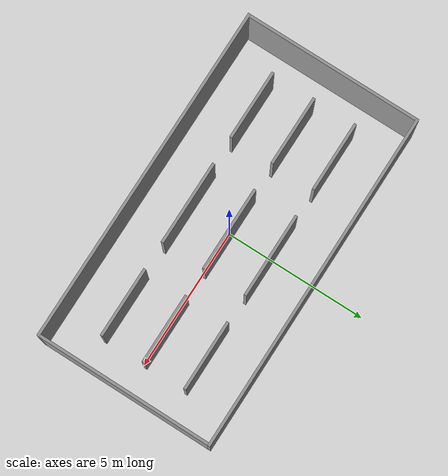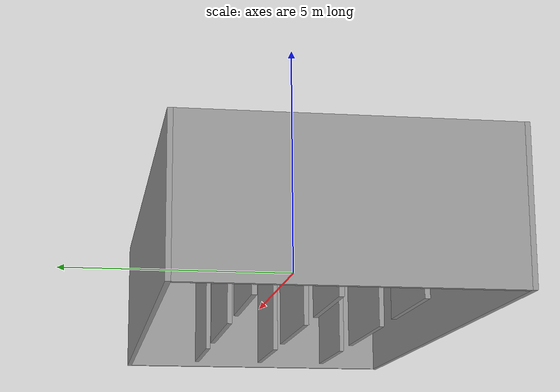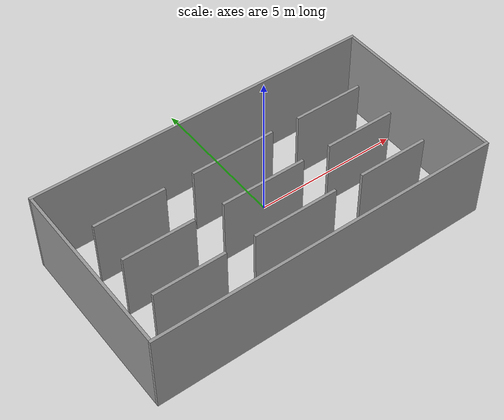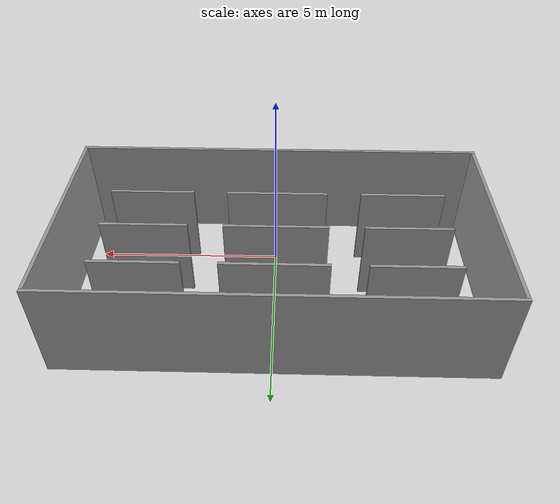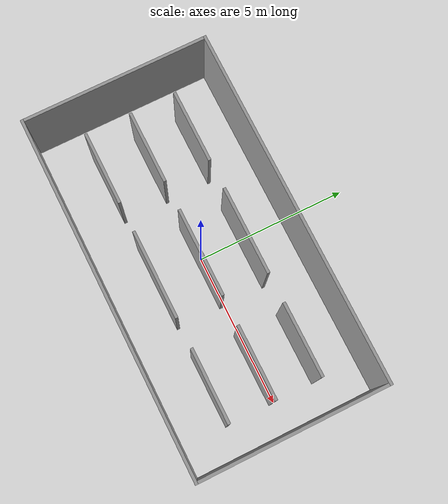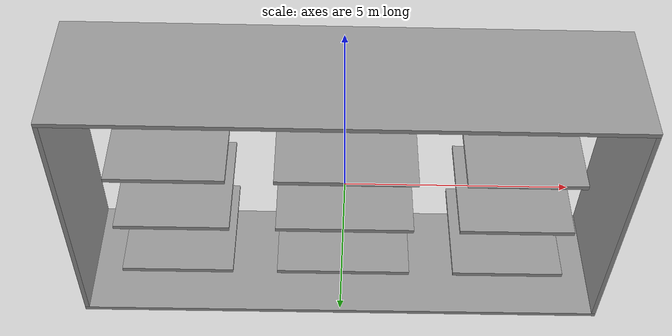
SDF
<?xml version='1.0'?>
<sdf version='1.6'>
  <model name='greehouse_wall'>
    <link name='link_2'>
      <pose frame=''>-0 3.15 0.173077 0 -0 0</pose>
      <inertial>
        <mass>1</mass>
        <inertia>
          <ixx>0.166667</ixx>
          <ixy>0</ixy>
          <ixz>0</ixz>
          <iyy>0.166667</iyy>
          <iyz>0</iyz>
          <izz>0.166667</izz>
        </inertia>
        <pose frame=''>0 0 0 0 -0 0</pose>
      </inertial>
      <self_collide>0</self_collide>
      <kinematic>0</kinematic>
      <visual name='visual'>
        <pose frame=''>0 0 0 0 -0 0</pose>
        <geometry>
          <box>
            <size>12.2 0.1 3</size>
          </box>
        </geometry>
        <material>
          <lighting>1</lighting>
          <script>
            <uri>file://media/materials/scripts/gazebo.material</uri>
            <name>Gazebo/Grey</name>
          </script>
          <ambient>0.3 0.3 0.3 1</ambient>
          <diffuse>0.7 0.7 0.7 1</diffuse>
          <specular>0.01 0.01 0.01 1</specular>
          <emissive>0 0 0 1</emissive>
          <shader type='vertex'>
            <normal_map>__default__</normal_map>
          </shader>
        </material>
        <cast_shadows>1</cast_shadows>
        <transparency>0</transparency>
      </visual>
      <collision name='collision'>
        <laser_retro>0</laser_retro>
        <max_contacts>10</max_contacts>
        <pose frame=''>0 0 0 0 -0 0</pose>
        <geometry>
          <box>
            <size>12.2 0.1 3</size>
          </box>
        </geometry>
        <surface>
          <friction>
            <ode>
              <mu>1</mu>
              <mu2>1</mu2>
              <fdir1>0 0 0</fdir1>
              <slip1>0</slip1>
              <slip2>0</slip2>
            </ode>
            <torsional>
              <coefficient>1</coefficient>
              <patch_radius>0</patch_radius>
              <surface_radius>0</surface_radius>
              <use_patch_radius>1</use_patch_radius>
              <ode>
                <slip>0</slip>
              </ode>
            </torsional>
          </friction>
          <bounce>
            <restitution_coefficient>0</restitution_coefficient>
            <threshold>1e+06</threshold>
          </bounce>
          <contact>
            <collide_without_contact>0</collide_without_contact>
            <collide_without_contact_bitmask>1</collide_without_contact_bitmask>
            <collide_bitmask>1</collide_bitmask>
            <ode>
              <soft_cfm>0</soft_cfm>
              <soft_erp>0.2</soft_erp>
              <kp>1e+13</kp>
              <kd>1</kd>
              <max_vel>0.01</max_vel>
              <min_depth>0</min_depth>
            </ode>
            <bullet>
              <split_impulse>1</split_impulse>
              <split_impulse_penetration_threshold>-0.01</split_impulse_penetration_threshold>
              <soft_cfm>0</soft_cfm>
              <soft_erp>0.2</soft_erp>
              <kp>1e+13</kp>
              <kd>1</kd>
            </bullet>
          </contact>
        </surface>
      </collision>
    </link>
    <link name='link_2_clone'>
      <pose frame=''>0 -3.15 0.173077 0 -0 0</pose>
      <inertial>
        <mass>1</mass>
        <inertia>
          <ixx>0.166667</ixx>
          <ixy>0</ixy>
          <ixz>0</ixz>
          <iyy>0.166667</iyy>
          <iyz>0</iyz>
          <izz>0.166667</izz>
        </inertia>
        <pose frame=''>0 0 0 0 -0 0</pose>
      </inertial>
      <self_collide>0</self_collide>
      <kinematic>0</kinematic>
      <visual name='visual'>
        <pose frame=''>0 0 0 0 -0 0</pose>
        <geometry>
          <box>
            <size>12.2 0.1 3</size>
          </box>
        </geometry>
        <material>
          <lighting>1</lighting>
          <script>
            <uri>file://media/materials/scripts/gazebo.material</uri>
            <name>Gazebo/Grey</name>
          </script>
          <ambient>0.3 0.3 0.3 1</ambient>
          <diffuse>0.7 0.7 0.7 1</diffuse>
          <specular>0.01 0.01 0.01 1</specular>
          <emissive>0 0 0 1</emissive>
          <shader type='vertex'>
            <normal_map>__default__</normal_map>
          </shader>
        </material>
        <cast_shadows>1</cast_shadows>
        <transparency>0</transparency>
      </visual>
      <collision name='collision'>
        <laser_retro>0</laser_retro>
        <max_contacts>10</max_contacts>
        <pose frame=''>0 0 0 0 -0 0</pose>
        <geometry>
          <box>
            <size>12.2 0.1 3</size>
          </box>
        </geometry>
        <surface>
          <friction>
            <ode>
              <mu>1</mu>
              <mu2>1</mu2>
              <fdir1>0 0 0</fdir1>
              <slip1>0</slip1>
              <slip2>0</slip2>
            </ode>
            <torsional>
              <coefficient>1</coefficient>
              <patch_radius>0</patch_radius>
              <surface_radius>0</surface_radius>
              <use_patch_radius>1</use_patch_radius>
              <ode>
                <slip>0</slip>
              </ode>
            </torsional>
          </friction>
          <bounce>
            <restitution_coefficient>0</restitution_coefficient>
            <threshold>1e+06</threshold>
          </bounce>
          <contact>
            <collide_without_contact>0</collide_without_contact>
            <collide_without_contact_bitmask>1</collide_without_contact_bitmask>
            <collide_bitmask>1</collide_bitmask>
            <ode>
              <soft_cfm>0</soft_cfm>
              <soft_erp>0.2</soft_erp>
              <kp>1e+13</kp>
              <kd>1</kd>
              <max_vel>0.01</max_vel>
              <min_depth>0</min_depth>
            </ode>
            <bullet>
              <split_impulse>1</split_impulse>
              <split_impulse_penetration_threshold>-0.01</split_impulse_penetration_threshold>
              <soft_cfm>0</soft_cfm>
              <soft_erp>0.2</soft_erp>
              <kp>1e+13</kp>
              <kd>1</kd>
            </bullet>
          </contact>
        </surface>
      </collision>
    </link>
    <link name='link_4'>
      <pose frame=''>6.05 0 0.173077 0 -0 0</pose>
      <inertial>
        <mass>1</mass>
        <inertia>
          <ixx>0.166667</ixx>
          <ixy>0</ixy>
          <ixz>0</ixz>
          <iyy>0.166667</iyy>
          <iyz>0</iyz>
          <izz>0.166667</izz>
        </inertia>
        <pose frame=''>0 0 0 0 -0 0</pose>
      </inertial>
      <self_collide>0</self_collide>
      <kinematic>0</kinematic>
      <visual name='visual'>
        <pose frame=''>0 0 0 0 -0 0</pose>
        <geometry>
          <box>
            <size>0.1 6.2 3</size>
          </box>
        </geometry>
        <material>
          <lighting>1</lighting>
          <script>
            <uri>file://media/materials/scripts/gazebo.material</uri>
            <name>Gazebo/Grey</name>
          </script>
          <ambient>0.3 0.3 0.3 1</ambient>
          <diffuse>0.7 0.7 0.7 1</diffuse>
          <specular>0.01 0.01 0.01 1</specular>
          <emissive>0 0 0 1</emissive>
          <shader type='vertex'>
            <normal_map>__default__</normal_map>
          </shader>
        </material>
        <cast_shadows>1</cast_shadows>
        <transparency>0</transparency>
      </visual>
      <collision name='collision'>
        <laser_retro>0</laser_retro>
        <max_contacts>10</max_contacts>
        <pose frame=''>0 0 0 0 -0 0</pose>
        <geometry>
          <box>
            <size>0.1 6.2 3</size>
          </box>
        </geometry>
        <surface>
          <friction>
            <ode>
              <mu>1</mu>
              <mu2>1</mu2>
              <fdir1>0 0 0</fdir1>
              <slip1>0</slip1>
              <slip2>0</slip2>
            </ode>
            <torsional>
              <coefficient>1</coefficient>
              <patch_radius>0</patch_radius>
              <surface_radius>0</surface_radius>
              <use_patch_radius>1</use_patch_radius>
              <ode>
                <slip>0</slip>
              </ode>
            </torsional>
          </friction>
          <bounce>
            <restitution_coefficient>0</restitution_coefficient>
            <threshold>1e+06</threshold>
          </bounce>
          <contact>
            <collide_without_contact>0</collide_without_contact>
            <collide_without_contact_bitmask>1</collide_without_contact_bitmask>
            <collide_bitmask>1</collide_bitmask>
            <ode>
              <soft_cfm>0</soft_cfm>
              <soft_erp>0.2</soft_erp>
              <kp>1e+13</kp>
              <kd>1</kd>
              <max_vel>0.01</max_vel>
              <min_depth>0</min_depth>
            </ode>
            <bullet>
              <split_impulse>1</split_impulse>
              <split_impulse_penetration_threshold>-0.01</split_impulse_penetration_threshold>
              <soft_cfm>0</soft_cfm>
              <soft_erp>0.2</soft_erp>
              <kp>1e+13</kp>
              <kd>1</kd>
            </bullet>
          </contact>
        </surface>
      </collision>
    </link>
    <link name='link_4_clone'>
      <pose frame=''>-6.05 0 0.173077 0 -0 0</pose>
      <inertial>
        <mass>1</mass>
        <inertia>
          <ixx>0.166667</ixx>
          <ixy>0</ixy>
          <ixz>0</ixz>
          <iyy>0.166667</iyy>
          <iyz>0</iyz>
          <izz>0.166667</izz>
        </inertia>
        <pose frame=''>0 0 0 0 -0 0</pose>
      </inertial>
      <self_collide>0</self_collide>
      <kinematic>0</kinematic>
      <visual name='visual'>
        <pose frame=''>0 0 0 0 -0 0</pose>
        <geometry>
          <box>
            <size>0.1 6.2 3</size>
          </box>
        </geometry>
        <material>
          <lighting>1</lighting>
          <script>
            <uri>file://media/materials/scripts/gazebo.material</uri>
            <name>Gazebo/Grey</name>
          </script>
          <ambient>0.3 0.3 0.3 1</ambient>
          <diffuse>0.7 0.7 0.7 1</diffuse>
          <specular>0.01 0.01 0.01 1</specular>
          <emissive>0 0 0 1</emissive>
          <shader type='vertex'>
            <normal_map>__default__</normal_map>
          </shader>
        </material>
        <cast_shadows>1</cast_shadows>
        <transparency>0</transparency>
      </visual>
      <collision name='collision'>
        <laser_retro>0</laser_retro>
        <max_contacts>10</max_contacts>
        <pose frame=''>0 0 0 0 -0 0</pose>
        <geometry>
          <box>
            <size>0.1 6.2 3</size>
          </box>
        </geometry>
        <surface>
          <friction>
            <ode>
              <mu>1</mu>
              <mu2>1</mu2>
              <fdir1>0 0 0</fdir1>
              <slip1>0</slip1>
              <slip2>0</slip2>
            </ode>
            <torsional>
              <coefficient>1</coefficient>
              <patch_radius>0</patch_radius>
              <surface_radius>0</surface_radius>
              <use_patch_radius>1</use_patch_radius>
              <ode>
                <slip>0</slip>
              </ode>
            </torsional>
          </friction>
          <bounce>
            <restitution_coefficient>0</restitution_coefficient>
            <threshold>1e+06</threshold>
          </bounce>
          <contact>
            <collide_without_contact>0</collide_without_contact>
            <collide_without_contact_bitmask>1</collide_without_contact_bitmask>
            <collide_bitmask>1</collide_bitmask>
            <ode>
              <soft_cfm>0</soft_cfm>
              <soft_erp>0.2</soft_erp>
              <kp>1e+13</kp>
              <kd>1</kd>
              <max_vel>0.01</max_vel>
              <min_depth>0</min_depth>
            </ode>
            <bullet>
              <split_impulse>1</split_impulse>
              <split_impulse_penetration_threshold>-0.01</split_impulse_penetration_threshold>
              <soft_cfm>0</soft_cfm>
              <soft_erp>0.2</soft_erp>
              <kp>1e+13</kp>
              <kd>1</kd>
            </bullet>
          </contact>
        </surface>
      </collision>
    </link>
    <link name='link_5'>
      <pose frame=''>-0 -0 -0.076923 0 -0 0</pose>
      <inertial>
        <mass>1</mass>
        <inertia>
          <ixx>0.166667</ixx>
          <ixy>0</ixy>
          <ixz>0</ixz>
          <iyy>0.166667</iyy>
          <iyz>0</iyz>
          <izz>0.166667</izz>
        </inertia>
        <pose frame=''>0 0 0 0 -0 0</pose>
      </inertial>
      <self_collide>0</self_collide>
      <kinematic>0</kinematic>
      <visual name='visual'>
        <pose frame=''>0 0 0 0 -0 0</pose>
        <geometry>
          <box>
            <size>3 0.1 2.5</size>
          </box>
        </geometry>
        <material>
          <lighting>1</lighting>
          <script>
            <uri>file://media/materials/scripts/gazebo.material</uri>
            <name>Gazebo/Grey</name>
          </script>
          <ambient>0.3 0.3 0.3 1</ambient>
          <diffuse>0.7 0.7 0.7 1</diffuse>
          <specular>0.01 0.01 0.01 1</specular>
          <emissive>0 0 0 1</emissive>
          <shader type='vertex'>
            <normal_map>__default__</normal_map>
          </shader>
        </material>
        <cast_shadows>1</cast_shadows>
        <transparency>0</transparency>
      </visual>
      <collision name='collision'>
        <laser_retro>0</laser_retro>
        <max_contacts>10</max_contacts>
        <pose frame=''>0 0 0 0 -0 0</pose>
        <geometry>
          <box>
            <size>3 0.1 2.5</size>
          </box>
        </geometry>
        <surface>
          <friction>
            <ode>
              <mu>1</mu>
              <mu2>1</mu2>
              <fdir1>0 0 0</fdir1>
              <slip1>0</slip1>
              <slip2>0</slip2>
            </ode>
            <torsional>
              <coefficient>1</coefficient>
              <patch_radius>0</patch_radius>
              <surface_radius>0</surface_radius>
              <use_patch_radius>1</use_patch_radius>
              <ode>
                <slip>0</slip>
              </ode>
            </torsional>
          </friction>
          <bounce>
            <restitution_coefficient>0</restitution_coefficient>
            <threshold>1e+06</threshold>
          </bounce>
          <contact>
            <collide_without_contact>0</collide_without_contact>
            <collide_without_contact_bitmask>1</collide_without_contact_bitmask>
            <collide_bitmask>1</collide_bitmask>
            <ode>
              <soft_cfm>0</soft_cfm>
              <soft_erp>0.2</soft_erp>
              <kp>1e+13</kp>
              <kd>1</kd>
              <max_vel>0.01</max_vel>
              <min_depth>0</min_depth>
            </ode>
            <bullet>
              <split_impulse>1</split_impulse>
              <split_impulse_penetration_threshold>-0.01</split_impulse_penetration_threshold>
              <soft_cfm>0</soft_cfm>
              <soft_erp>0.2</soft_erp>
              <kp>1e+13</kp>
              <kd>1</kd>
            </bullet>
          </contact>
        </surface>
      </collision>
    </link>
    <link name='link_5_clone'>
      <pose frame=''>-3.75 -0 -0.076923 0 -0 0</pose>
      <inertial>
        <mass>1</mass>
        <inertia>
          <ixx>0.166667</ixx>
          <ixy>0</ixy>
          <ixz>0</ixz>
          <iyy>0.166667</iyy>
          <iyz>0</iyz>
          <izz>0.166667</izz>
        </inertia>
        <pose frame=''>0 0 0 0 -0 0</pose>
      </inertial>
      <self_collide>0</self_collide>
      <kinematic>0</kinematic>
      <visual name='visual'>
        <pose frame=''>0 0 0 0 -0 0</pose>
        <geometry>
          <box>
            <size>2.5 0.1 2.5</size>
          </box>
        </geometry>
        <material>
          <lighting>1</lighting>
          <script>
            <uri>file://media/materials/scripts/gazebo.material</uri>
            <name>Gazebo/Grey</name>
          </script>
          <ambient>0.3 0.3 0.3 1</ambient>
          <diffuse>0.7 0.7 0.7 1</diffuse>
          <specular>0.01 0.01 0.01 1</specular>
          <emissive>0 0 0 1</emissive>
          <shader type='vertex'>
            <normal_map>__default__</normal_map>
          </shader>
        </material>
        <cast_shadows>1</cast_shadows>
        <transparency>0</transparency>
      </visual>
      <collision name='collision'>
        <laser_retro>0</laser_retro>
        <max_contacts>10</max_contacts>
        <pose frame=''>0 0 0 0 -0 0</pose>
        <geometry>
          <box>
            <size>2.5 0.1 2.5</size>
          </box>
        </geometry>
        <surface>
          <friction>
            <ode>
              <mu>1</mu>
              <mu2>1</mu2>
              <fdir1>0 0 0</fdir1>
              <slip1>0</slip1>
              <slip2>0</slip2>
            </ode>
            <torsional>
              <coefficient>1</coefficient>
              <patch_radius>0</patch_radius>
              <surface_radius>0</surface_radius>
              <use_patch_radius>1</use_patch_radius>
              <ode>
                <slip>0</slip>
              </ode>
            </torsional>
          </friction>
          <bounce>
            <restitution_coefficient>0</restitution_coefficient>
            <threshold>1e+06</threshold>
          </bounce>
          <contact>
            <collide_without_contact>0</collide_without_contact>
            <collide_without_contact_bitmask>1</collide_without_contact_bitmask>
            <collide_bitmask>1</collide_bitmask>
            <ode>
              <soft_cfm>0</soft_cfm>
              <soft_erp>0.2</soft_erp>
              <kp>1e+13</kp>
              <kd>1</kd>
              <max_vel>0.01</max_vel>
              <min_depth>0</min_depth>
            </ode>
            <bullet>
              <split_impulse>1</split_impulse>
              <split_impulse_penetration_threshold>-0.01</split_impulse_penetration_threshold>
              <soft_cfm>0</soft_cfm>
              <soft_erp>0.2</soft_erp>
              <kp>1e+13</kp>
              <kd>1</kd>
            </bullet>
          </contact>
        </surface>
      </collision>
    </link>
    <link name='link_5_clone_0'>
      <pose frame=''>-0 -1.55 -0.076923 0 -0 0</pose>
      <inertial>
        <mass>1</mass>
        <inertia>
          <ixx>0.166667</ixx>
          <ixy>0</ixy>
          <ixz>0</ixz>
          <iyy>0.166667</iyy>
          <iyz>0</iyz>
          <izz>0.166667</izz>
        </inertia>
        <pose frame=''>0 0 0 0 -0 0</pose>
      </inertial>
      <self_collide>0</self_collide>
      <kinematic>0</kinematic>
      <visual name='visual'>
        <pose frame=''>0 0 0 0 -0 0</pose>
        <geometry>
          <box>
            <size>3 0.1 2.5</size>
          </box>
        </geometry>
        <material>
          <lighting>1</lighting>
          <script>
            <uri>file://media/materials/scripts/gazebo.material</uri>
            <name>Gazebo/Grey</name>
          </script>
          <ambient>0.3 0.3 0.3 1</ambient>
          <diffuse>0.7 0.7 0.7 1</diffuse>
          <specular>0.01 0.01 0.01 1</specular>
          <emissive>0 0 0 1</emissive>
          <shader type='vertex'>
            <normal_map>__default__</normal_map>
          </shader>
        </material>
        <cast_shadows>1</cast_shadows>
        <transparency>0</transparency>
      </visual>
      <collision name='collision'>
        <laser_retro>0</laser_retro>
        <max_contacts>10</max_contacts>
        <pose frame=''>0 0 0 0 -0 0</pose>
        <geometry>
          <box>
            <size>3 0.1 2.5</size>
          </box>
        </geometry>
        <surface>
          <friction>
            <ode>
              <mu>1</mu>
              <mu2>1</mu2>
              <fdir1>0 0 0</fdir1>
              <slip1>0</slip1>
              <slip2>0</slip2>
            </ode>
            <torsional>
              <coefficient>1</coefficient>
              <patch_radius>0</patch_radius>
              <surface_radius>0</surface_radius>
              <use_patch_radius>1</use_patch_radius>
              <ode>
                <slip>0</slip>
              </ode>
            </torsional>
          </friction>
          <bounce>
            <restitution_coefficient>0</restitution_coefficient>
            <threshold>1e+06</threshold>
          </bounce>
          <contact>
            <collide_without_contact>0</collide_without_contact>
            <collide_without_contact_bitmask>1</collide_without_contact_bitmask>
            <collide_bitmask>1</collide_bitmask>
            <ode>
              <soft_cfm>0</soft_cfm>
              <soft_erp>0.2</soft_erp>
              <kp>1e+13</kp>
              <kd>1</kd>
              <max_vel>0.01</max_vel>
              <min_depth>0</min_depth>
            </ode>
            <bullet>
              <split_impulse>1</split_impulse>
              <split_impulse_penetration_threshold>-0.01</split_impulse_penetration_threshold>
              <soft_cfm>0</soft_cfm>
              <soft_erp>0.2</soft_erp>
              <kp>1e+13</kp>
              <kd>1</kd>
            </bullet>
          </contact>
        </surface>
      </collision>
    </link>
    <link name='link_5_clone_1'>
      <pose frame=''>-0 1.55 -0.076923 0 -0 0</pose>
      <inertial>
        <mass>1</mass>
        <inertia>
          <ixx>0.166667</ixx>
          <ixy>0</ixy>
          <ixz>0</ixz>
          <iyy>0.166667</iyy>
          <iyz>0</iyz>
          <izz>0.166667</izz>
        </inertia>
        <pose frame=''>0 0 0 0 -0 0</pose>
      </inertial>
      <self_collide>0</self_collide>
      <kinematic>0</kinematic>
      <visual name='visual'>
        <pose frame=''>0 0 0 0 -0 0</pose>
        <geometry>
          <box>
            <size>3 0.1 2.5</size>
          </box>
        </geometry>
        <material>
          <lighting>1</lighting>
          <script>
            <uri>file://media/materials/scripts/gazebo.material</uri>
            <name>Gazebo/Grey</name>
          </script>
          <ambient>0.3 0.3 0.3 1</ambient>
          <diffuse>0.7 0.7 0.7 1</diffuse>
          <specular>0.01 0.01 0.01 1</specular>
          <emissive>0 0 0 1</emissive>
          <shader type='vertex'>
            <normal_map>__default__</normal_map>
          </shader>
        </material>
        <cast_shadows>1</cast_shadows>
        <transparency>0</transparency>
      </visual>
      <collision name='collision'>
        <laser_retro>0</laser_retro>
        <max_contacts>10</max_contacts>
        <pose frame=''>0 0 0 0 -0 0</pose>
        <geometry>
          <box>
            <size>3 0.1 2.5</size>
          </box>
        </geometry>
        <surface>
          <friction>
            <ode>
              <mu>1</mu>
              <mu2>1</mu2>
              <fdir1>0 0 0</fdir1>
              <slip1>0</slip1>
              <slip2>0</slip2>
            </ode>
            <torsional>
              <coefficient>1</coefficient>
              <patch_radius>0</patch_radius>
              <surface_radius>0</surface_radius>
              <use_patch_radius>1</use_patch_radius>
              <ode>
                <slip>0</slip>
              </ode>
            </torsional>
          </friction>
          <bounce>
            <restitution_coefficient>0</restitution_coefficient>
            <threshold>1e+06</threshold>
          </bounce>
          <contact>
            <collide_without_contact>0</collide_without_contact>
            <collide_without_contact_bitmask>1</collide_without_contact_bitmask>
            <collide_bitmask>1</collide_bitmask>
            <ode>
              <soft_cfm>0</soft_cfm>
              <soft_erp>0.2</soft_erp>
              <kp>1e+13</kp>
              <kd>1</kd>
              <max_vel>0.01</max_vel>
              <min_depth>0</min_depth>
            </ode>
            <bullet>
              <split_impulse>1</split_impulse>
              <split_impulse_penetration_threshold>-0.01</split_impulse_penetration_threshold>
              <soft_cfm>0</soft_cfm>
              <soft_erp>0.2</soft_erp>
              <kp>1e+13</kp>
              <kd>1</kd>
            </bullet>
          </contact>
        </surface>
      </collision>
    </link>
    <link name='link_5_clone_clone'>
      <pose frame=''>3.75 -0 -0.076923 0 -0 0</pose>
      <inertial>
        <mass>1</mass>
        <inertia>
          <ixx>0.166667</ixx>
          <ixy>0</ixy>
          <ixz>0</ixz>
          <iyy>0.166667</iyy>
          <iyz>0</iyz>
          <izz>0.166667</izz>
        </inertia>
        <pose frame=''>0 0 0 0 -0 0</pose>
      </inertial>
      <self_collide>0</self_collide>
      <kinematic>0</kinematic>
      <visual name='visual'>
        <pose frame=''>0 0 0 0 -0 0</pose>
        <geometry>
          <box>
            <size>2.5 0.1 2.5</size>
          </box>
        </geometry>
        <material>
          <lighting>1</lighting>
          <script>
            <uri>file://media/materials/scripts/gazebo.material</uri>
            <name>Gazebo/Grey</name>
          </script>
          <ambient>0.3 0.3 0.3 1</ambient>
          <diffuse>0.7 0.7 0.7 1</diffuse>
          <specular>0.01 0.01 0.01 1</specular>
          <emissive>0 0 0 1</emissive>
          <shader type='vertex'>
            <normal_map>__default__</normal_map>
          </shader>
        </material>
        <cast_shadows>1</cast_shadows>
        <transparency>0</transparency>
      </visual>
      <collision name='collision'>
        <laser_retro>0</laser_retro>
        <max_contacts>10</max_contacts>
        <pose frame=''>0 0 0 0 -0 0</pose>
        <geometry>
          <box>
            <size>2.5 0.1 2.5</size>
          </box>
        </geometry>
        <surface>
          <friction>
            <ode>
              <mu>1</mu>
              <mu2>1</mu2>
              <fdir1>0 0 0</fdir1>
              <slip1>0</slip1>
              <slip2>0</slip2>
            </ode>
            <torsional>
              <coefficient>1</coefficient>
              <patch_radius>0</patch_radius>
              <surface_radius>0</surface_radius>
              <use_patch_radius>1</use_patch_radius>
              <ode>
                <slip>0</slip>
              </ode>
            </torsional>
          </friction>
          <bounce>
            <restitution_coefficient>0</restitution_coefficient>
            <threshold>1e+06</threshold>
          </bounce>
          <contact>
            <collide_without_contact>0</collide_without_contact>
            <collide_without_contact_bitmask>1</collide_without_contact_bitmask>
            <collide_bitmask>1</collide_bitmask>
            <ode>
              <soft_cfm>0</soft_cfm>
              <soft_erp>0.2</soft_erp>
              <kp>1e+13</kp>
              <kd>1</kd>
              <max_vel>0.01</max_vel>
              <min_depth>0</min_depth>
            </ode>
            <bullet>
              <split_impulse>1</split_impulse>
              <split_impulse_penetration_threshold>-0.01</split_impulse_penetration_threshold>
              <soft_cfm>0</soft_cfm>
              <soft_erp>0.2</soft_erp>
              <kp>1e+13</kp>
              <kd>1</kd>
            </bullet>
          </contact>
        </surface>
      </collision>
    </link>
    <link name='link_5_clone_clone_clone'>
      <pose frame=''>3.75 -1.55 -0.076923 0 -0 0</pose>
      <inertial>
        <mass>1</mass>
        <inertia>
          <ixx>0.166667</ixx>
          <ixy>0</ixy>
          <ixz>0</ixz>
          <iyy>0.166667</iyy>
          <iyz>0</iyz>
          <izz>0.166667</izz>
        </inertia>
        <pose frame=''>0 0 0 0 -0 0</pose>
      </inertial>
      <self_collide>0</self_collide>
      <kinematic>0</kinematic>
      <visual name='visual'>
        <pose frame=''>0 0 0 0 -0 0</pose>
        <geometry>
          <box>
            <size>2.5 0.1 2.5</size>
          </box>
        </geometry>
        <material>
          <lighting>1</lighting>
          <script>
            <uri>file://media/materials/scripts/gazebo.material</uri>
            <name>Gazebo/Grey</name>
          </script>
          <ambient>0.3 0.3 0.3 1</ambient>
          <diffuse>0.7 0.7 0.7 1</diffuse>
          <specular>0.01 0.01 0.01 1</specular>
          <emissive>0 0 0 1</emissive>
          <shader type='vertex'>
            <normal_map>__default__</normal_map>
          </shader>
        </material>
        <cast_shadows>1</cast_shadows>
        <transparency>0</transparency>
      </visual>
      <collision name='collision'>
        <laser_retro>0</laser_retro>
        <max_contacts>10</max_contacts>
        <pose frame=''>0 0 0 0 -0 0</pose>
        <geometry>
          <box>
            <size>2.5 0.1 2.5</size>
          </box>
        </geometry>
        <surface>
          <friction>
            <ode>
              <mu>1</mu>
              <mu2>1</mu2>
              <fdir1>0 0 0</fdir1>
              <slip1>0</slip1>
              <slip2>0</slip2>
            </ode>
            <torsional>
              <coefficient>1</coefficient>
              <patch_radius>0</patch_radius>
              <surface_radius>0</surface_radius>
              <use_patch_radius>1</use_patch_radius>
              <ode>
                <slip>0</slip>
              </ode>
            </torsional>
          </friction>
          <bounce>
            <restitution_coefficient>0</restitution_coefficient>
            <threshold>1e+06</threshold>
          </bounce>
          <contact>
            <collide_without_contact>0</collide_without_contact>
            <collide_without_contact_bitmask>1</collide_without_contact_bitmask>
            <collide_bitmask>1</collide_bitmask>
            <ode>
              <soft_cfm>0</soft_cfm>
              <soft_erp>0.2</soft_erp>
              <kp>1e+13</kp>
              <kd>1</kd>
              <max_vel>0.01</max_vel>
              <min_depth>0</min_depth>
            </ode>
            <bullet>
              <split_impulse>1</split_impulse>
              <split_impulse_penetration_threshold>-0.01</split_impulse_penetration_threshold>
              <soft_cfm>0</soft_cfm>
              <soft_erp>0.2</soft_erp>
              <kp>1e+13</kp>
              <kd>1</kd>
            </bullet>
          </contact>
        </surface>
      </collision>
    </link>
    <link name='link_5_clone_clone_clone_0'>
      <pose frame=''>3.75 1.55 -0.076923 0 -0 0</pose>
      <inertial>
        <mass>1</mass>
        <inertia>
          <ixx>0.166667</ixx>
          <ixy>0</ixy>
          <ixz>0</ixz>
          <iyy>0.166667</iyy>
          <iyz>0</iyz>
          <izz>0.166667</izz>
        </inertia>
        <pose frame=''>0 0 0 0 -0 0</pose>
      </inertial>
      <self_collide>0</self_collide>
      <kinematic>0</kinematic>
      <visual name='visual'>
        <pose frame=''>0 0 0 0 -0 0</pose>
        <geometry>
          <box>
            <size>2.5 0.1 2.5</size>
          </box>
        </geometry>
        <material>
          <lighting>1</lighting>
          <script>
            <uri>file://media/materials/scripts/gazebo.material</uri>
            <name>Gazebo/Grey</name>
          </script>
          <ambient>0.3 0.3 0.3 1</ambient>
          <diffuse>0.7 0.7 0.7 1</diffuse>
          <specular>0.01 0.01 0.01 1</specular>
          <emissive>0 0 0 1</emissive>
          <shader type='vertex'>
            <normal_map>__default__</normal_map>
          </shader>
        </material>
        <cast_shadows>1</cast_shadows>
        <transparency>0</transparency>
      </visual>
      <collision name='collision'>
        <laser_retro>0</laser_retro>
        <max_contacts>10</max_contacts>
        <pose frame=''>0 0 0 0 -0 0</pose>
        <geometry>
          <box>
            <size>2.5 0.1 2.5</size>
          </box>
        </geometry>
        <surface>
          <friction>
            <ode>
              <mu>1</mu>
              <mu2>1</mu2>
              <fdir1>0 0 0</fdir1>
              <slip1>0</slip1>
              <slip2>0</slip2>
            </ode>
            <torsional>
              <coefficient>1</coefficient>
              <patch_radius>0</patch_radius>
              <surface_radius>0</surface_radius>
              <use_patch_radius>1</use_patch_radius>
              <ode>
                <slip>0</slip>
              </ode>
            </torsional>
          </friction>
          <bounce>
            <restitution_coefficient>0</restitution_coefficient>
            <threshold>1e+06</threshold>
          </bounce>
          <contact>
            <collide_without_contact>0</collide_without_contact>
            <collide_without_contact_bitmask>1</collide_without_contact_bitmask>
            <collide_bitmask>1</collide_bitmask>
            <ode>
              <soft_cfm>0</soft_cfm>
              <soft_erp>0.2</soft_erp>
              <kp>1e+13</kp>
              <kd>1</kd>
              <max_vel>0.01</max_vel>
              <min_depth>0</min_depth>
            </ode>
            <bullet>
              <split_impulse>1</split_impulse>
              <split_impulse_penetration_threshold>-0.01</split_impulse_penetration_threshold>
              <soft_cfm>0</soft_cfm>
              <soft_erp>0.2</soft_erp>
              <kp>1e+13</kp>
              <kd>1</kd>
            </bullet>
          </contact>
        </surface>
      </collision>
    </link>
    <link name='link_5_clone_clone_clone_1'>
      <pose frame=''>-3.75 1.55 -0.076923 0 -0 0</pose>
      <inertial>
        <mass>1</mass>
        <inertia>
          <ixx>0.166667</ixx>
          <ixy>0</ixy>
          <ixz>0</ixz>
          <iyy>0.166667</iyy>
          <iyz>0</iyz>
          <izz>0.166667</izz>
        </inertia>
        <pose frame=''>0 0 0 0 -0 0</pose>
      </inertial>
      <self_collide>0</self_collide>
      <kinematic>0</kinematic>
      <visual name='visual'>
        <pose frame=''>0 0 0 0 -0 0</pose>
        <geometry>
          <box>
            <size>2.5 0.1 2.5</size>
          </box>
        </geometry>
        <material>
          <lighting>1</lighting>
          <script>
            <uri>file://media/materials/scripts/gazebo.material</uri>
            <name>Gazebo/Grey</name>
          </script>
          <ambient>0.3 0.3 0.3 1</ambient>
          <diffuse>0.7 0.7 0.7 1</diffuse>
          <specular>0.01 0.01 0.01 1</specular>
          <emissive>0 0 0 1</emissive>
          <shader type='vertex'>
            <normal_map>__default__</normal_map>
          </shader>
        </material>
        <cast_shadows>1</cast_shadows>
        <transparency>0</transparency>
      </visual>
      <collision name='collision'>
        <laser_retro>0</laser_retro>
        <max_contacts>10</max_contacts>
        <pose frame=''>0 0 0 0 -0 0</pose>
        <geometry>
          <box>
            <size>2.5 0.1 2.5</size>
          </box>
        </geometry>
        <surface>
          <friction>
            <ode>
              <mu>1</mu>
              <mu2>1</mu2>
              <fdir1>0 0 0</fdir1>
              <slip1>0</slip1>
              <slip2>0</slip2>
            </ode>
            <torsional>
              <coefficient>1</coefficient>
              <patch_radius>0</patch_radius>
              <surface_radius>0</surface_radius>
              <use_patch_radius>1</use_patch_radius>
              <ode>
                <slip>0</slip>
              </ode>
            </torsional>
          </friction>
          <bounce>
            <restitution_coefficient>0</restitution_coefficient>
            <threshold>1e+06</threshold>
          </bounce>
          <contact>
            <collide_without_contact>0</collide_without_contact>
            <collide_without_contact_bitmask>1</collide_without_contact_bitmask>
            <collide_bitmask>1</collide_bitmask>
            <ode>
              <soft_cfm>0</soft_cfm>
              <soft_erp>0.2</soft_erp>
              <kp>1e+13</kp>
              <kd>1</kd>
              <max_vel>0.01</max_vel>
              <min_depth>0</min_depth>
            </ode>
            <bullet>
              <split_impulse>1</split_impulse>
              <split_impulse_penetration_threshold>-0.01</split_impulse_penetration_threshold>
              <soft_cfm>0</soft_cfm>
              <soft_erp>0.2</soft_erp>
              <kp>1e+13</kp>
              <kd>1</kd>
            </bullet>
          </contact>
        </surface>
      </collision>
    </link>
    <link name='link_5_clone_clone_clone_2'>
      <pose frame=''>-3.75 -1.55 -0.076923 0 -0 0</pose>
      <inertial>
        <mass>1</mass>
        <inertia>
          <ixx>0.166667</ixx>
          <ixy>0</ixy>
          <ixz>0</ixz>
          <iyy>0.166667</iyy>
          <iyz>0</iyz>
          <izz>0.166667</izz>
        </inertia>
        <pose frame=''>0 0 0 0 -0 0</pose>
      </inertial>
      <self_collide>0</self_collide>
      <kinematic>0</kinematic>
      <visual name='visual'>
        <pose frame=''>0 0 0 0 -0 0</pose>
        <geometry>
          <box>
            <size>2.5 0.1 2.5</size>
          </box>
        </geometry>
        <material>
          <lighting>1</lighting>
          <script>
            <uri>file://media/materials/scripts/gazebo.material</uri>
            <name>Gazebo/Grey</name>
          </script>
          <ambient>0.3 0.3 0.3 1</ambient>
          <diffuse>0.7 0.7 0.7 1</diffuse>
          <specular>0.01 0.01 0.01 1</specular>
          <emissive>0 0 0 1</emissive>
          <shader type='vertex'>
            <normal_map>__default__</normal_map>
          </shader>
        </material>
        <cast_shadows>1</cast_shadows>
        <transparency>0</transparency>
      </visual>
      <collision name='collision'>
        <laser_retro>0</laser_retro>
        <max_contacts>10</max_contacts>
        <pose frame=''>0 0 0 0 -0 0</pose>
        <geometry>
          <box>
            <size>2.5 0.1 2.5</size>
          </box>
        </geometry>
        <surface>
          <friction>
            <ode>
              <mu>1</mu>
              <mu2>1</mu2>
              <fdir1>0 0 0</fdir1>
              <slip1>0</slip1>
              <slip2>0</slip2>
            </ode>
            <torsional>
              <coefficient>1</coefficient>
              <patch_radius>0</patch_radius>
              <surface_radius>0</surface_radius>
              <use_patch_radius>1</use_patch_radius>
              <ode>
                <slip>0</slip>
              </ode>
            </torsional>
          </friction>
          <bounce>
            <restitution_coefficient>0</restitution_coefficient>
            <threshold>1e+06</threshold>
          </bounce>
          <contact>
            <collide_without_contact>0</collide_without_contact>
            <collide_without_contact_bitmask>1</collide_without_contact_bitmask>
            <collide_bitmask>1</collide_bitmask>
            <ode>
              <soft_cfm>0</soft_cfm>
              <soft_erp>0.2</soft_erp>
              <kp>1e+13</kp>
              <kd>1</kd>
              <max_vel>0.01</max_vel>
              <min_depth>0</min_depth>
            </ode>
            <bullet>
              <split_impulse>1</split_impulse>
              <split_impulse_penetration_threshold>-0.01</split_impulse_penetration_threshold>
              <soft_cfm>0</soft_cfm>
              <soft_erp>0.2</soft_erp>
              <kp>1e+13</kp>
              <kd>1</kd>
            </bullet>
          </contact>
        </surface>
      </collision>
    </link>
    <joint name='link_2_JOINT_0' type='fixed'>
      <parent>link_2</parent>
      <child>link_4_clone</child>
      <pose frame=''>0 0 0 0 -0 0</pose>
      <physics>
        <ode>
          <limit>
            <cfm>0</cfm>
            <erp>0.2</erp>
          </limit>
          <suspension>
            <cfm>0</cfm>
            <erp>0.2</erp>
          </suspension>
        </ode>
      </physics>
    </joint>
    <joint name='link_2_clone_JOINT_2' type='fixed'>
      <parent>link_2_clone</parent>
      <child>link_4</child>
      <pose frame=''>0 0 0 0 -0 0</pose>
      <physics>
        <ode>
          <limit>
            <cfm>0</cfm>
            <erp>0.2</erp>
          </limit>
          <suspension>
            <cfm>0</cfm>
            <erp>0.2</erp>
          </suspension>
        </ode>
      </physics>
    </joint>
    <joint name='link_4_JOINT_3' type='fixed'>
      <parent>link_4</parent>
      <child>link_5_clone_clone_clone_0</child>
      <pose frame=''>0 0 0 0 -0 0</pose>
      <physics>
        <ode>
          <limit>
            <cfm>0</cfm>
            <erp>0.2</erp>
          </limit>
          <suspension>
            <cfm>0</cfm>
            <erp>0.2</erp>
          </suspension>
        </ode>
      </physics>
    </joint>
    <joint name='link_4_clone_JOINT_1' type='fixed'>
      <parent>link_4_clone</parent>
      <child>link_2_clone</child>
      <pose frame=''>0 0 0 0 -0 0</pose>
      <physics>
        <ode>
          <limit>
            <cfm>0</cfm>
            <erp>0.2</erp>
          </limit>
          <suspension>
            <cfm>0</cfm>
            <erp>0.2</erp>
          </suspension>
        </ode>
      </physics>
    </joint>
    <joint name='link_5_JOINT_8' type='fixed'>
      <parent>link_5</parent>
      <child>link_5_clone_clone</child>
      <pose frame=''>0 0 0 0 -0 0</pose>
      <physics>
        <ode>
          <limit>
            <cfm>0</cfm>
            <erp>0.2</erp>
          </limit>
          <suspension>
            <cfm>0</cfm>
            <erp>0.2</erp>
          </suspension>
        </ode>
      </physics>
    </joint>
    <joint name='link_5_clone_0_JOINT_11' type='fixed'>
      <parent>link_5_clone_0</parent>
      <child>link_5_clone_clone_clone_2</child>
      <pose frame=''>0 0 0 0 -0 0</pose>
      <physics>
        <ode>
          <limit>
            <cfm>0</cfm>
            <erp>0.2</erp>
          </limit>
          <suspension>
            <cfm>0</cfm>
            <erp>0.2</erp>
          </suspension>
        </ode>
      </physics>
    </joint>
    <joint name='link_5_clone_1_JOINT_5' type='fixed'>
      <parent>link_5_clone_1</parent>
      <child>link_5_clone_clone_clone_1</child>
      <pose frame=''>0 0 0 0 -0 0</pose>
      <physics>
        <ode>
          <limit>
            <cfm>0</cfm>
            <erp>0.2</erp>
          </limit>
          <suspension>
            <cfm>0</cfm>
            <erp>0.2</erp>
          </suspension>
        </ode>
      </physics>
    </joint>
    <joint name='link_5_clone_JOINT_7' type='fixed'>
      <parent>link_5_clone</parent>
      <child>link_5</child>
      <pose frame=''>0 0 0 0 -0 0</pose>
      <physics>
        <ode>
          <limit>
            <cfm>0</cfm>
            <erp>0.2</erp>
          </limit>
          <suspension>
            <cfm>0</cfm>
            <erp>0.2</erp>
          </suspension>
        </ode>
      </physics>
    </joint>
    <joint name='link_5_clone_clone_JOINT_9' type='fixed'>
      <parent>link_5_clone_clone</parent>
      <child>link_5_clone_clone_clone</child>
      <pose frame=''>0 0 0 0 -0 0</pose>
      <physics>
        <ode>
          <limit>
            <cfm>0</cfm>
            <erp>0.2</erp>
          </limit>
          <suspension>
            <cfm>0</cfm>
            <erp>0.2</erp>
          </suspension>
        </ode>
      </physics>
    </joint>
    <joint name='link_5_clone_clone_clone_0_JOINT_4' type='fixed'>
      <parent>link_5_clone_clone_clone_0</parent>
      <child>link_5_clone_1</child>
      <pose frame=''>0 0 0 0 -0 0</pose>
      <physics>
        <ode>
          <limit>
            <cfm>0</cfm>
            <erp>0.2</erp>
          </limit>
          <suspension>
            <cfm>0</cfm>
            <erp>0.2</erp>
          </suspension>
        </ode>
      </physics>
    </joint>
    <joint name='link_5_clone_clone_clone_1_JOINT_6' type='fixed'>
      <parent>link_5_clone_clone_clone_1</parent>
      <child>link_5_clone</child>
      <pose frame=''>0 0 0 0 -0 0</pose>
      <physics>
        <ode>
          <limit>
            <cfm>0</cfm>
            <erp>0.2</erp>
          </limit>
          <suspension>
            <cfm>0</cfm>
            <erp>0.2</erp>
          </suspension>
        </ode>
      </physics>
    </joint>
    <joint name='link_5_clone_clone_clone_JOINT_10' type='fixed'>
      <parent>link_5_clone_clone_clone</parent>
      <child>link_5_clone_0</child>
      <pose frame=''>0 0 0 0 -0 0</pose>
      <physics>
        <ode>
          <limit>
            <cfm>0</cfm>
            <erp>0.2</erp>
          </limit>
          <suspension>
            <cfm>0</cfm>
            <erp>0.2</erp>
          </suspension>
        </ode>
      </physics>
    </joint>
    <static>1</static>
    <allow_auto_disable>1</allow_auto_disable>
  </model>
</sdf>
